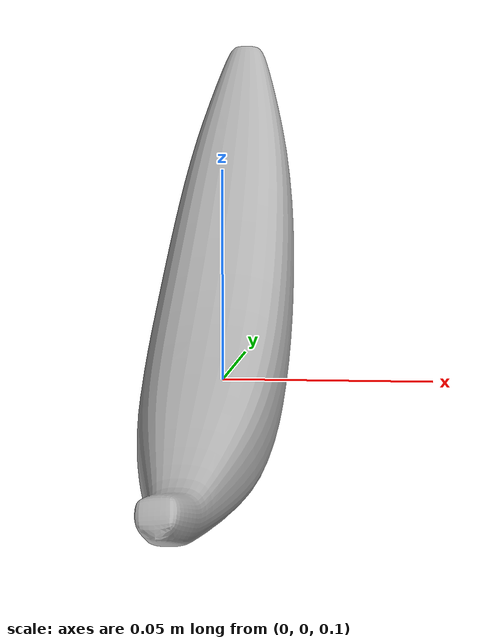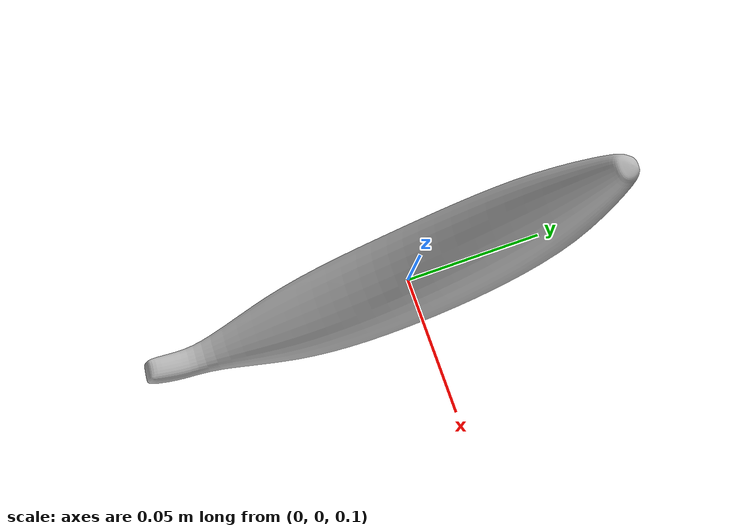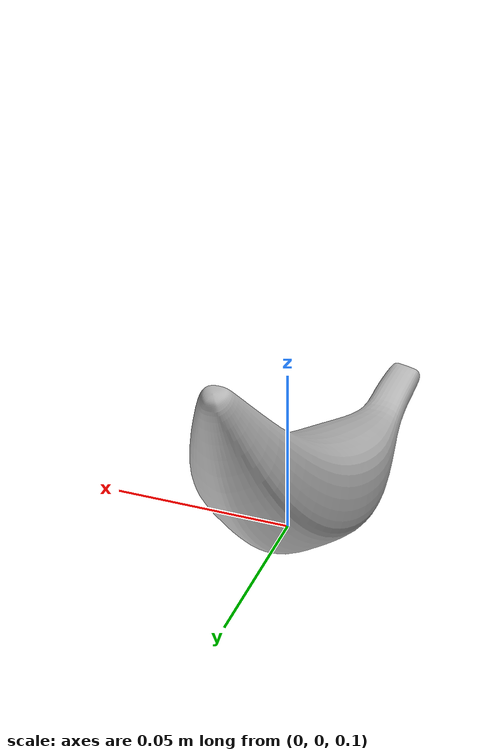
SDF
<?xml version="1.0" ?>
<sdf version="1.5">
  <model name="Banana">
    <link name="link">
      <pose>0 0 0.115 0 0 0</pose>
      <inertial>
        <mass>0.390</mass>
        <inertia>
          <ixx>0.00058</ixx>
          <ixy>0</ixy>
          <ixz>0</ixz>
          <iyy>0.00058</iyy>
          <iyz>0</iyz>
          <izz>0.00019</izz>
        </inertia>
      </inertial>
      <collision name="collision">
        <geometry>
          <mesh>
            <uri>model://3-Banana/meshes/Banana.dae</uri>
          </mesh>
        </geometry>
      </collision>
      <visual name="visual">
        <geometry>
          <mesh>
            <uri>model://3-Banana/meshes/Banana.dae</uri>
          </mesh>
        </geometry>
        <material>
          <script>
            <uri>model://3-Banana/materials/scripts</uri>
            <uri>model://3-Banana/materials/textures</uri>
            <name>Banana/Diffuse</name>
          </script>
        </material>
      </visual>
    </link>
  </model>
</sdf>
